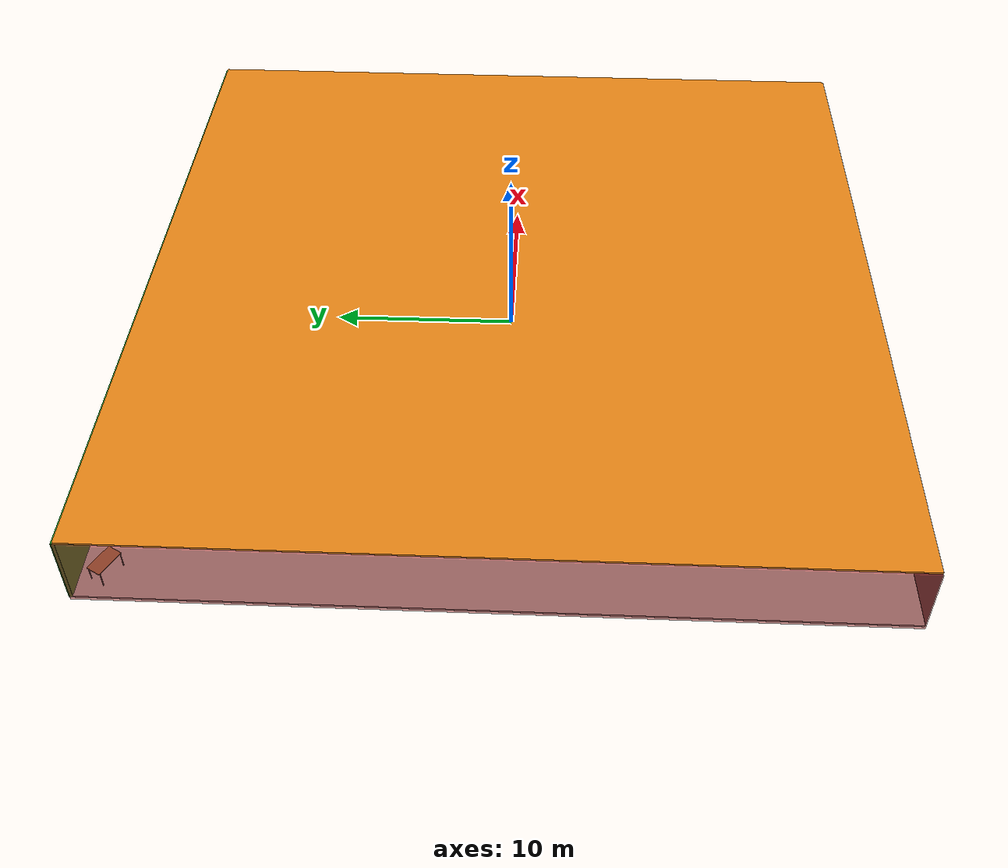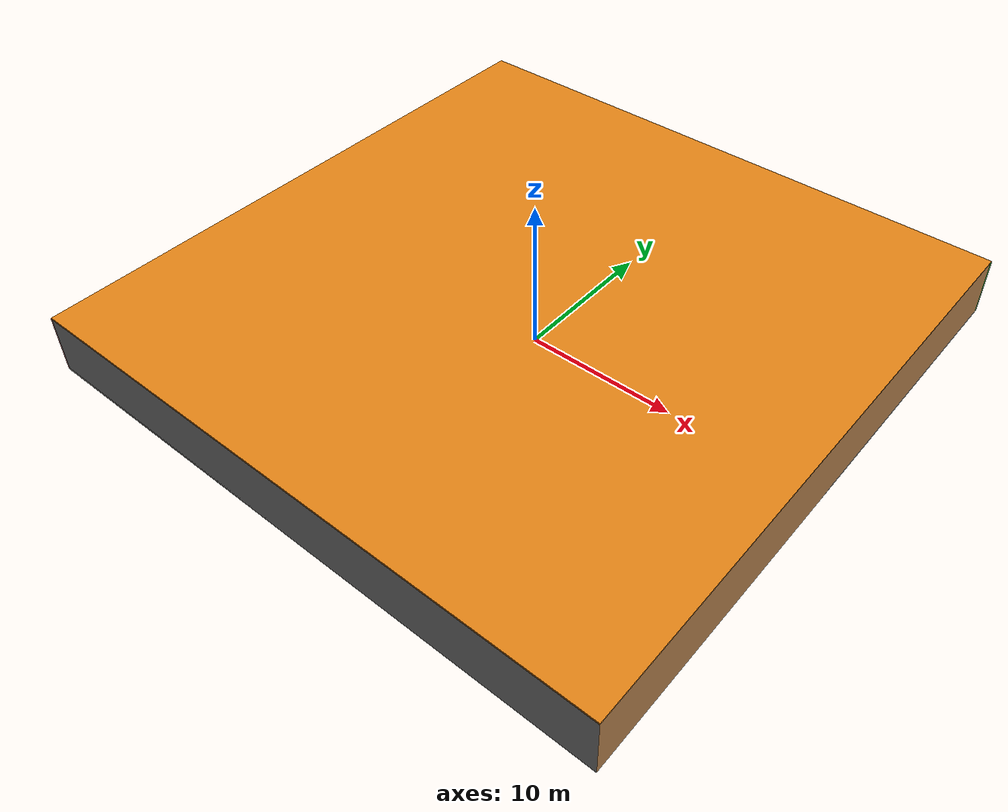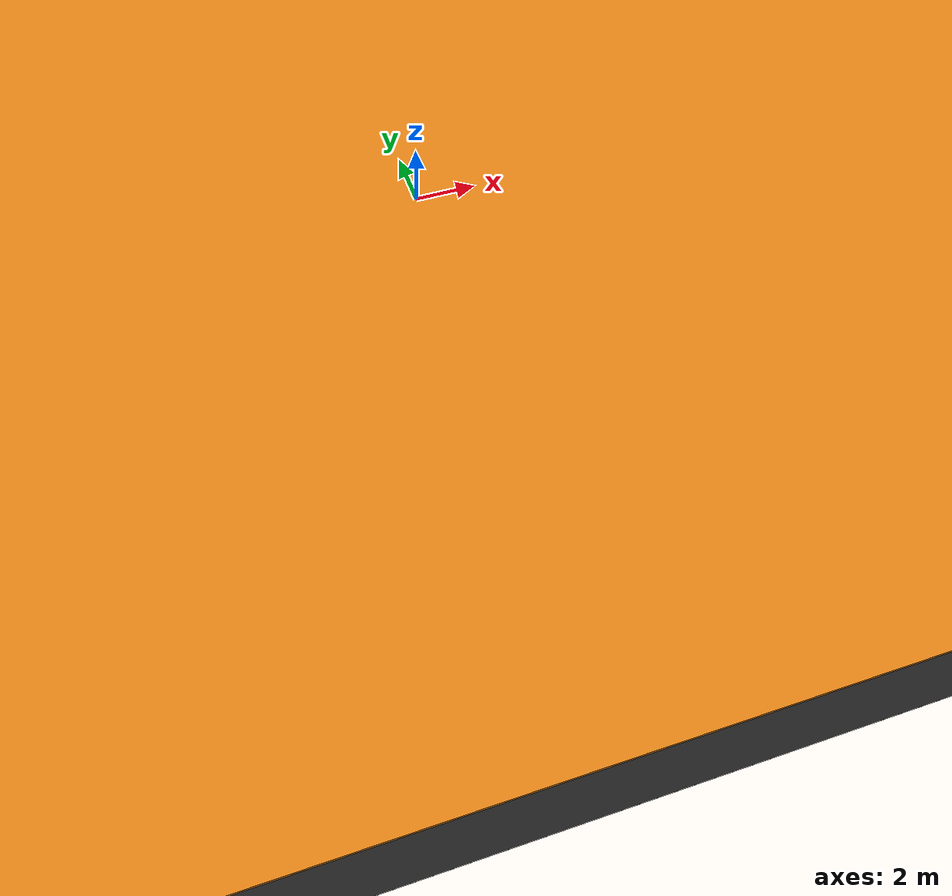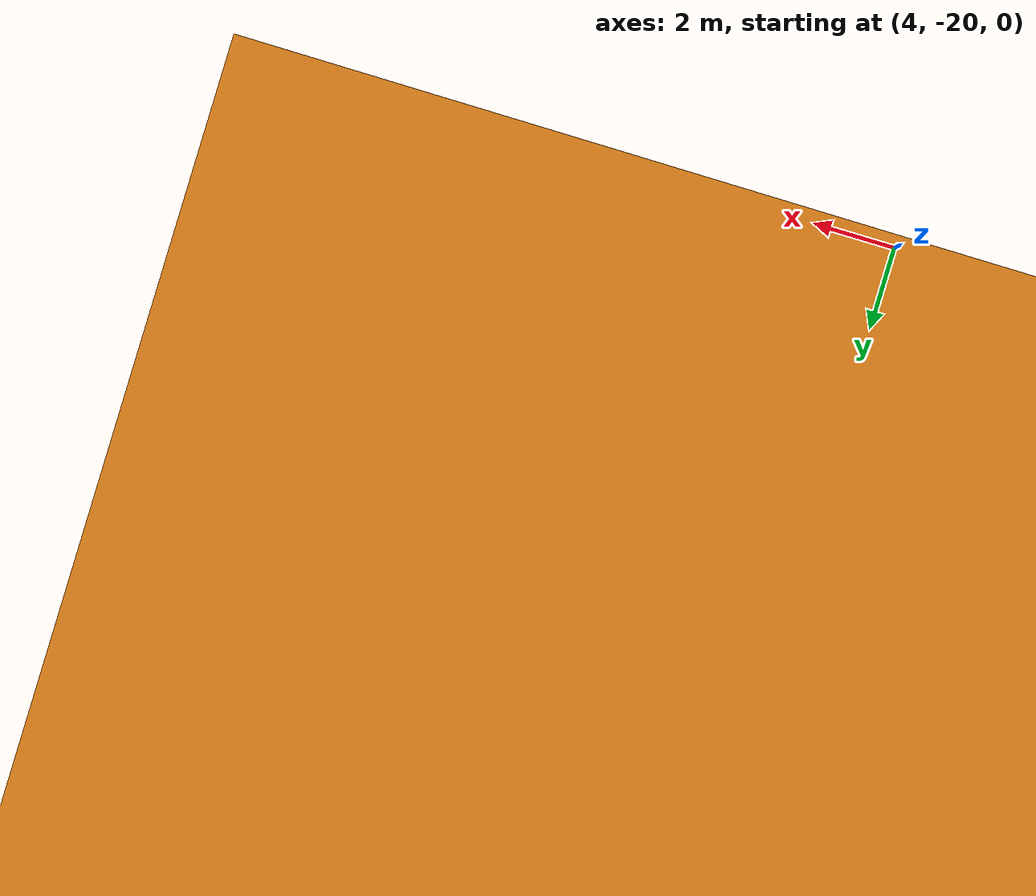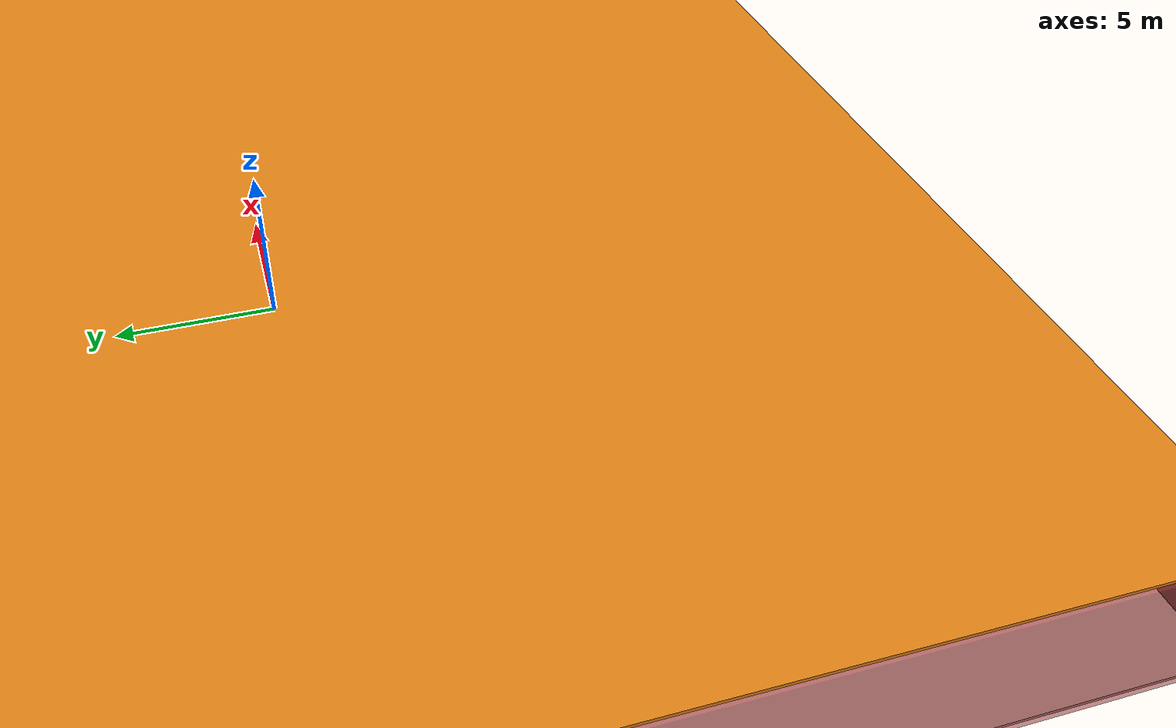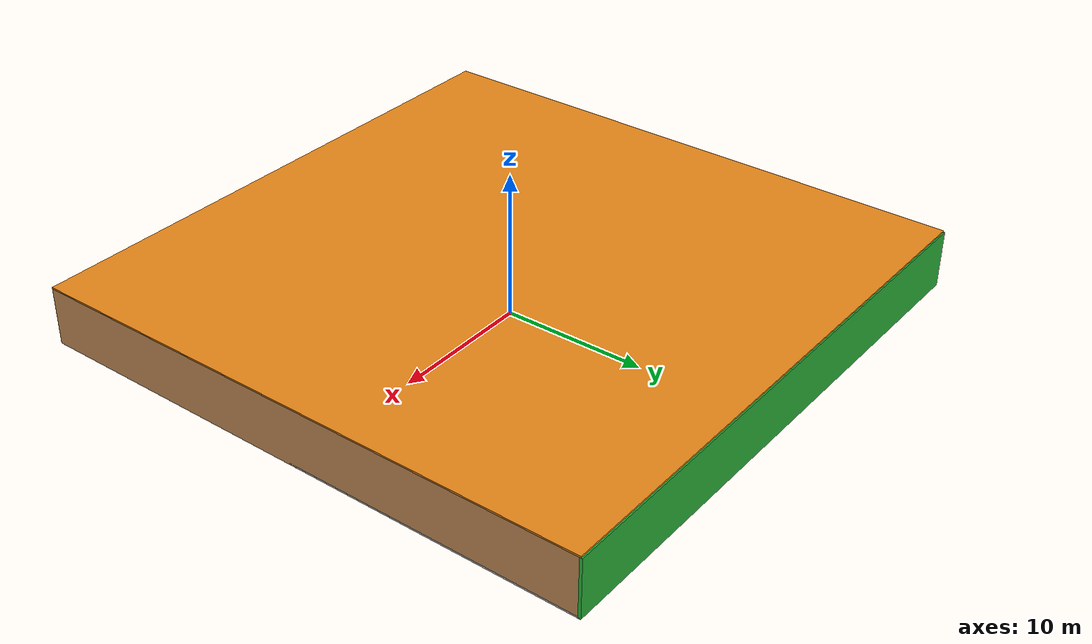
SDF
<sdf version="1.4">
 <world name="default">
  <physics type="ode">
   <max_step_size>0.001</max_step_size>
   <real_time_factor>1</real_time_factor>
   <real_time_update_rate>1000</real_time_update_rate>
   <gravity>0 0 -9.8</gravity>
  </physics>
  <scene><ambient>0.4 0.4 0.4 1</ambient><background>0.7 0.7 0.7 1</background><shadows>1</shadows></scene>
  <model name="Surrounding">
   <static>1</static>
   <link name="Ceiling">
    <collision name="Ceiling_Collision"><geometry><box><size>40 40 0.1</size></box></geometry></collision>
    <visual name="Ceiling_Visual">
     <geometry><box><size>40 40 0.1</size></box></geometry>
     <material>
      <script><uri>file://media/materials/scripts/gazebo.material</uri><name>Gazebo/Orange</name></script>
     </material>
    </visual>
    <pose>0 0 4.05 0 0 0</pose>
   </link>
   <link name="Wall_South">
    <collision name="Wall_South_Collision">
     <geometry><box><size>40 0 4</size></box></geometry>
     <pose>0 0 2 0 -0 0</pose>
    </collision>
    <visual name="Wall_South_Visual">
     <pose>0 0 2 0 -0 0</pose>
     <geometry><box><size>40 0 4</size></box></geometry>
     <material>
      <script><uri>file://media/materials/scripts/gazebo.material</uri><name>Gazebo/Road</name></script>
     </material>
    </visual>
    <velocity_decay><linear>0</linear><angular>0</angular></velocity_decay>
    <pose>0 -20 0 0 -0 0</pose>
   </link>
   <link name="Wall_East">
    <collision name="Wall_21_Collision">
     <geometry><box><size>40 0 4</size></box></geometry>
     <pose>0 0 2 0 -0 0</pose>
    </collision>
    <visual name="Wall_21_Visual">
     <pose>0 0 2 0 -0 0</pose>
     <geometry><box><size>40 0 4</size></box></geometry>
     <material>
      <script><uri>file://media/materials/scripts/gazebo.material</uri><name>Gazebo/Wood</name></script>
     </material>
    </visual>
    <velocity_decay><linear>0</linear><angular>0</angular></velocity_decay>
    <pose>20 0 0 0 -0 1.5708</pose>
   </link>
   <link name="Wall_North">
    <collision name="Wall_22_Collision">
     <geometry><box><size>40 0.2 4</size></box></geometry>
     <pose>0 0 2 0 -0 0</pose>
    </collision>
    <visual name="Wall_22_Visual">
     <pose>0 0 2 0 -0 0</pose>
     <geometry><box><size>40 0.2 4</size></box></geometry>
     <material>
      <script><uri>file://media/materials/scripts/gazebo.material</uri><name>Gazebo/Green</name></script>
     </material>
    </visual>
    <velocity_decay><linear>0</linear><angular>0</angular></velocity_decay>
    <pose>0 20 0 0 -0 0</pose>
   </link>
   <link name="Wall_West">
    <collision name="Wall_23_Collision">
     <geometry><box><size>40 0.2 4</size></box></geometry>
     <pose>0 0 2 0 -0 0</pose>
    </collision>
    <visual name="Wall_23_Visual">
     <pose>0 0 2 0 -0 0</pose>
     <geometry><box><size>40 0.2 4</size></box></geometry>
     <material>
      <script><uri>file://media/materials/scripts/gazebo.material</uri><name>Gazebo/RedTransparent</name></script>
     </material>
    </visual>
    <velocity_decay><linear>0</linear><angular>0</angular></velocity_decay>
    <pose>-20 0 0 0 0 -1.5708</pose>
   </link>
   <link name="Ground_link">
    <collision name="collision">
     <pose>0 0 .05 0 -0 0</pose>
     <geometry><box><size>40 40 0.1</size></box></geometry>
    </collision>
    <visual name="visual">
     <pose>0 0 .05 0 -0 0</pose>
     <geometry><box><size>40 40 0.1</size></box></geometry>
     <material>
      <script><uri>file://media/materials/scripts/gazebo.material</uri><name>Gazebo/CeilingTiled</name></script>
     </material>
    </visual>
   </link>
   <static>1</static>
  </model>
  <spherical_coordinates>
   <surface_model>EARTH_WGS84</surface_model>
   <latitude_deg>0</latitude_deg>
   <longitude_deg>0</longitude_deg>
   <elevation>0</elevation>
   <heading_deg>0</heading_deg>
  </spherical_coordinates>
  <light name="lightball_0" type="diffuse">
   <diffuse>0.8 0.8 0.8 1</diffuse>
   <specular>0.2 0.2 0.2 1</specular>
   <attenuation>
    <range>100</range>
    <constant>0.7</constant>
    <linear>0.01</linear>
    <quadratic>0.001</quadratic>
   </attenuation>
   <direction>-0.5 0.1 -0.9</direction>
   <pose>-18.6530033216 16.1858257118 3.29617393302 0 0 0</pose>
  </light>
  <light name="lightball_1" type="diffuse">
   <diffuse>0.8 0.8 0.8 1</diffuse>
   <specular>0.2 0.2 0.2 1</specular>
   <attenuation>
    <range>100</range>
    <constant>0.7</constant>
    <linear>0.01</linear>
    <quadratic>0.001</quadratic>
   </attenuation>
   <direction>-0.5 0.1 -0.9</direction>
   <pose>-10.1456002348 -4.30419962099 3.75222881903 0 0 0</pose>
  </light>
  <light name="lightball_2" type="diffuse">
   <diffuse>0.8 0.8 0.8 1</diffuse>
   <specular>0.2 0.2 0.2 1</specular>
   <attenuation>
    <range>100</range>
    <constant>0.7</constant>
    <linear>0.01</linear>
    <quadratic>0.001</quadratic>
   </attenuation>
   <direction>-0.5 0.1 -0.9</direction>
   <pose>-0.144484770459 10.1518648158 2.07344115544 0 0 0</pose>
  </light>
  <light name="lightball_3" type="diffuse">
   <diffuse>0.8 0.8 0.8 1</diffuse>
   <specular>0.2 0.2 0.2 1</specular>
   <attenuation>
    <range>100</range>
    <constant>0.7</constant>
    <linear>0.01</linear>
    <quadratic>0.001</quadratic>
   </attenuation>
   <direction>-0.5 0.1 -0.9</direction>
   <pose>-2.05408486161 8.09708014171 1.28815220465 0 0 0</pose>
  </light>
  <include><uri>model://table</uri><pose>-18.5688129179 18.6132939805 0 0 0 2.6403186764</pose></include>
  <include>
   <uri>model://construction_cone</uri>
   <pose>-13.7831986203 10.5693557417 0 0 0 2.62201405561</pose>
  </include>
  <include>
   <uri>model://construction_cone</uri>
   <pose>-11.4257951633 -11.8888873644 0 0 0 0.793745838158</pose>
  </include>
  <include><uri>model://cabinet</uri><pose>-8.03996687268 -6.27461390918 0 0 0 2.57707320908</pose></include>
  <include><uri>model://cabinet</uri><pose>-7.88476114991 10.2659199374 0 0 0 0.790151262859</pose></include>
  <include>
   <uri>model://construction_cone</uri>
   <pose>-7.75994026307 17.4781413958 0 0 0 0.0629765181719</pose>
  </include>
  <include>
   <uri>model://robocup_3Dsim_goal</uri>
   <pose>-4.86856112813 -15.4783533399 0 0 0 0.0165869029151</pose>
  </include>
  <include><uri>model://cabinet</uri><pose>-4.55097404275 -0.0835467165682 0 0 0 1.31879157942</pose></include>
  <include><uri>model://cabinet</uri><pose>-4.79327804837 6.16695975256 0 0 0 2.37871545829</pose></include>
  <include><uri>model://table</uri><pose>-5.55182978241 9.58162070951 0 0 0 1.8173446063</pose></include>
  <include>
   <uri>model://robocup_3Dsim_goal</uri>
   <pose>-3.63007542629 -9.52763131317 0 0 0 1.08967127922</pose>
  </include>
  <include>
   <uri>model://textured_shapes</uri>
   <pose>1.48287062089 -15.1870803063 0 0 0 0.65045211363</pose>
  </include>
  <include>
   <uri>model://textured_shapes</uri>
   <pose>-0.644918374374 -0.355546439946 0 0 0 0.466828322672</pose>
  </include>
  <include>
   <uri>model://robocup_3Dsim_goal</uri>
   <pose>-0.619627891082 14.5539857118 0 0 0 0.240623513738</pose>
  </include>
  <include><uri>model://table</uri><pose>1.39567912458 18.6108041659 0 0 0 3.04479005175</pose></include>
  <include>
   <uri>model://textured_shapes</uri>
   <pose>4.18127428824 -0.661556968273 0 0 0 2.68647430035</pose>
  </include>
  <include>
   <uri>model://construction_cone</uri>
   <pose>2.35920198945 3.81780577108 0 0 0 3.08094350135</pose>
  </include>
  <include><uri>model://cabinet</uri><pose>2.85077683255 14.5412522988 0 0 0 0.772989924669</pose></include>
  <include><uri>model://cabinet</uri><pose>5.4337002154 3.96305440561 0 0 0 1.45948605054</pose></include>
  <include>
   <uri>model://textured_shapes</uri>
   <pose>5.90014492805 6.30675931113 0 0 0 1.56715083789</pose>
  </include>
  <include>
   <uri>model://robocup_3Dsim_goal</uri>
   <pose>9.81633012626 -17.4547869027 0 0 0 2.66898943786</pose>
  </include>
  <include><uri>model://table</uri><pose>9.78509218105 -14.0314865185 0 0 0 1.63475222316</pose></include>
  <include>
   <uri>model://construction_cone</uri>
   <pose>9.48716043059 -10.5348729889 0 0 0 0.890793406962</pose>
  </include>
  <include>
   <uri>model://textured_shapes</uri>
   <pose>9.60592705599 -5.48466841715 0 0 0 0.74024226767</pose>
  </include>
  <include>
   <uri>model://textured_shapes</uri>
   <pose>9.48564924611 8.75714028157 0 0 0 1.06846737104</pose>
  </include>
  <include>
   <uri>model://construction_cone</uri>
   <pose>13.662680539 -18.5820226744 0 0 0 0.937622018523</pose>
  </include>
  <include><uri>model://table</uri><pose>13.5915613116 -14.8009502332 0 0 0 0.226032658548</pose></include>
  <include>
   <uri>model://robocup_3Dsim_goal</uri>
   <pose>13.0188014403 -8.11688094112 0 0 0 0.164611519033</pose>
  </include>
  <include><uri>model://cabinet</uri><pose>12.6964030532 10.3229431268 0 0 0 1.70836309753</pose></include>
  <include><uri>model://table</uri><pose>15.3069850657 -14.7581755172 0 0 0 0.519538495022</pose></include>
  <include><uri>model://cabinet</uri><pose>15.0658974067 -8.39009982866 0 0 0 3.04118587562</pose></include>
  <include><uri>model://cabinet</uri><pose>15.3855818318 18.1653659565 0 0 0 2.83775438268</pose></include>
  <include><uri>model://cabinet</uri><pose>18.5422306989 -14.6269399697 0 0 0 2.03764058625</pose></include>
  <include><uri>model://cabinet</uri><pose>18.2199409909 4.58824439627 0 0 0 2.99959725269</pose></include>
  <include><uri>model://cabinet</uri><pose>18.7413150904 15.4017580906 0 0 0 1.01289018411</pose></include>
 </world>
</sdf>

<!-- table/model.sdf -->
<sdf version="1.5">
  <model name="table">
    <static>true</static>
    <link name="link">
      <collision name="surface">
        <pose>0 0 1.0 0 0 0</pose>
        <geometry>
          <box>
            <size>1.5 0.8 0.03</size>
          </box>
        </geometry>
        <surface>
          <friction>
            <ode>
              <mu>0.6</mu>
              <mu2>0.6</mu2>
            </ode>
          </friction>
        </surface>
      </collision>
      <visual name="visual1">
        <pose>0 0 1.0 0 0 0</pose>
        <geometry>
          <box>
            <size>1.5 0.8 0.03</size>
          </box>
        </geometry>
        <material>
          <script>
            <uri>model://media/materials/scripts/gazebo.material</uri>
            <name>Gazebo/Wood</name>
          </script>
        </material>
      </visual>
      <collision name="front_left_leg">
        <pose>0.68 0.38 0.5 0 0 0</pose>
        <geometry>
          <cylinder>
            <radius>0.02</radius>
            <length>1.0</length>
          </cylinder>
        </geometry>
      </collision>
      <visual name="front_left_leg">
        <pose>0.68 0.38 0.5 0 0 0</pose>
        <geometry>
          <cylinder>
            <radius>0.02</radius>
            <length>1.0</length>
          </cylinder>
        </geometry>
        <material>
          <script>
            <uri>model://media/materials/scripts/gazebo.material</uri>
            <name>Gazebo/Grey</name>
          </script>
        </material>
      </visual>
      <collision name="front_right_leg">
        <pose>0.68 -0.38 0.5 0 0 0</pose>
        <geometry>
          <cylinder>
            <radius>0.02</radius>
            <length>1.0</length>
          </cylinder>
        </geometry>
      </collision>
      <visual name="front_right_leg">
        <pose>0.68 -0.38 0.5 0 0 0</pose>
        <geometry>
          <cylinder>
            <radius>0.02</radius>
            <length>1.0</length>
          </cylinder>
        </geometry>
        <material>
          <script>
            <uri>model://media/materials/scripts/gazebo.material</uri>
            <name>Gazebo/Grey</name>
          </script>
        </material>
      </visual>
      <collision name="back_right_leg">
        <pose>-0.68 -0.38 0.5 0 0 0</pose>
        <geometry>
          <cylinder>
            <radius>0.02</radius>
            <length>1.0</length>
          </cylinder>
        </geometry>
      </collision>
      <visual name="back_right_leg">
        <pose>-0.68 -0.38 0.5 0 0 0</pose>
        <geometry>
          <cylinder>
            <radius>0.02</radius>
            <length>1.0</length>
          </cylinder>
        </geometry>
        <material>
          <script>
            <uri>model://media/materials/scripts/gazebo.material</uri>
            <name>Gazebo/Grey</name>
          </script>
        </material>
      </visual>
      <collision name="back_left_leg">
        <pose>-0.68 0.38 0.5 0 0 0</pose>
        <geometry>
          <cylinder>
            <radius>0.02</radius>
            <length>1.0</length>
          </cylinder>
        </geometry>
      </collision>
      <visual name="back_left_leg">
        <pose>-0.68 0.38 0.5 0 0 0</pose>
        <geometry>
          <cylinder>
            <radius>0.02</radius>
            <length>1.0</length>
          </cylinder>
        </geometry>
        <material>
          <script>
            <uri>model://media/materials/scripts/gazebo.material</uri>
            <name>Gazebo/Grey</name>
          </script>
        </material>
      </visual>
    </link>
  </model>
</sdf>

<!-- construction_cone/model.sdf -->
<sdf version="1.5">
  <model name="Construction Cone">
    <link name="link">
      <collision name="collision">
        <geometry>
          <mesh>
            <scale>10 10 10</scale>
            <uri>file://isr-testbed/construction_cone/meshes/construction_cone.dae</uri>
          </mesh>
        </geometry>
      </collision>
      <visual name="visual">
        <geometry>
          <mesh>
            <scale>10 10 10</scale>
            <uri>file://isr-testbed/construction_cone/meshes/construction_cone.dae</uri>
          </mesh>
        </geometry>
      </visual>
    </link>
  </model>
</sdf>

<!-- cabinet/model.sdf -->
<sdf version="1.5">
  <model name="cabinet">
    <static>true</static>
    <link name="cabinet_bottom_plate">
      <inertial>
        <pose>0 0 -1 0 0 0</pose>
        <inertia>
          <ixx>2.050000</ixx>
          <ixy>0</ixy>
          <ixz>0</ixz>
          <iyy>2.050000</iyy>
          <iyz>0</iyz>
          <izz>2.050000</izz>
        </inertia>
        <mass>25.000000</mass>
      </inertial>
      <collision name="cabinet_bottom_plate_geom">
        <pose>0 0 0.010000 0 0 0</pose>
        <geometry>
          <box>
            <size>0.450000 0.450000 0.020000</size>
          </box>
        </geometry>
      </collision>
      <visual name="cabinet_bottom_plate_geom_visual">
        <pose>0 0 0.010000 0 0 0</pose>
        <geometry>
          <box>
            <size>0.450000 0.450000 0.020000</size>
          </box>
        </geometry>
        <material>
          <script>
            <uri>model://media/materials/scripts/gazebo.material</uri>
            <name>Gazebo/Wood</name>
          </script>
        </material>
      </visual>
      <collision name="cabinet_bottom_plate_geom_cabinet_back_plate">
        <pose>0.235000 0 0.510000 0 0 0</pose>
        <geometry>
          <box>
            <size>0.020000 0.450000 1.020000</size>
          </box>
        </geometry>
      </collision>
      <visual name="cabinet_bottom_plate_geom_cabinet_back_plate_visual">
        <pose>0.235000 0 0.510000 0 0 0</pose>
        <geometry>
          <box>
            <size>0.020000 0.450000 1.020000</size>
          </box>
        </geometry>
        <material>
          <script>
            <uri>model://media/materials/scripts/gazebo.material</uri>
            <name>Gazebo/Wood</name>
          </script>
        </material>
      </visual>
      <collision name="cabinet_bottom_plate_geom_cabinet_left_plate">
        <pose>0 0.235000 0.510000 0 0 0</pose>
        <geometry>
          <box>
            <size>0.450000 0.020000 1.020000</size>
          </box>
        </geometry>
      </collision>
      <visual name="cabinet_bottom_plate_geom_cabinet_left_plate_visual">
        <pose>0 0.235000 0.510000 0 0 0</pose>
        <geometry>
          <box>
            <size>0.450000 0.020000 1.020000</size>
          </box>
        </geometry>
        <material>
          <script>
            <uri>model://media/materials/scripts/gazebo.material</uri>
            <name>Gazebo/Wood</name>
          </script>
        </material>
      </visual>
      <collision name="cabinet_bottom_plate_geom_cabinet_middle_plate">
        <pose>0 0 0.510000 0 0 0</pose>
        <geometry>
          <box>
            <size>0.450000 0.450000 0.020000</size>
          </box>
        </geometry>
      </collision>
      <visual name="cabinet_bottom_plate_geom_cabinet_middle_plate_visual">
        <pose>0 0 0.510000 0 0 0</pose>
        <geometry>
          <box>
            <size>0.450000 0.450000 0.020000</size>
          </box>
        </geometry>
        <material>
          <script>
            <uri>model://media/materials/scripts/gazebo.material</uri>
            <name>Gazebo/Wood</name>
          </script>
        </material>
      </visual>
      <collision name="cabinet_bottom_plate_geom_cabinet_right_plate">
        <pose>0 -0.235000 0.510000 0 0 0</pose>
        <geometry>
          <box>
            <size>0.450000 0.020000 1.020000</size>
          </box>
        </geometry>
      </collision>
      <visual name="cabinet_bottom_plate_geom_cabinet_right_plate_visual">
        <pose>0 -0.235000 0.510000 0 0 0</pose>
        <geometry>
          <box>
            <size>0.450000 0.020000 1.020000</size>
          </box>
        </geometry>
        <material>
          <script>
            <uri>model://media/materials/scripts/gazebo.material</uri>
            <name>Gazebo/Wood</name>
          </script>
        </material>
      </visual>
      <collision name="cabinet_bottom_plate_geom_cabinet_top_plate">
        <pose>0 0 1.010000 0 0 0</pose>
        <geometry>
          <box>
            <size>0.450000 0.450000 0.020000</size>
          </box>
        </geometry>
      </collision>
      <visual name="cabinet_bottom_plate_geom_cabinet_top_plate_visual">
        <pose>0 0 1.010000 0 0 0</pose>
        <geometry>
          <box>
            <size>0.450000 0.450000 0.020000</size>
          </box>
        </geometry>
        <material>
          <script>
            <uri>model://media/materials/scripts/gazebo.material</uri>
            <name>Gazebo/Wood</name>
          </script>
        </material>
      </visual>
    </link>
  </model>
</sdf>

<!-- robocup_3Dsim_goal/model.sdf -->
<sdf version="1.5">
  <model name="robocup_3d_goal">
    <static>true</static>
    <link name="left_post">
      <pose>0 1.05 0.45 0 0 0</pose>
      <collision name="collision">
        <geometry>
          <cylinder>
            <radius>0.05</radius>
            <length>0.9</length>
          </cylinder>
        </geometry>
      </collision>
      <visual name="visual">
        <geometry>
          <cylinder>
            <radius>0.05</radius>
            <length>0.9</length>
          </cylinder>
        </geometry>
        <material>
          <script>
            <uri>file://media/materials/scripts/gazebo.material</uri>
            <name>Gazebo/ZincYellow</name>
          </script>
        </material>
      </visual>
    </link>
    <link name="left_support_horiz_lower">
      <pose>0.30 1.05 0.01 0 0 0</pose>
      <collision name="collision">
        <geometry>
          <box>
            <size>0.50 0.02 0.02</size>
          </box>
        </geometry>
      </collision>
      <visual name="visual">
        <geometry>
          <box>
            <size>0.50 0.02 0.02</size>
          </box>
        </geometry>
        <material>
          <script>
            <uri>file://media/materials/scripts/gazebo.material</uri>
            <name>Gazebo/White</name>
          </script>
        </material>
      </visual>
    </link>
    <link name="left_support_horiz_upper">
      <pose>0.30 1.05 0.79 0 0 0</pose>
      <collision name="collision">
        <geometry>
          <box>
            <size>0.50 0.02 0.02</size>
          </box>
        </geometry>
      </collision>
      <visual name="visual">
        <geometry>
          <box>
            <size>0.50 0.02 0.02</size>
          </box>
        </geometry>
        <material>
          <script>
            <uri>file://media/materials/scripts/gazebo.material</uri>
            <name>Gazebo/White</name>
          </script>
        </material>
      </visual>
    </link>
    <link name="left_support_vertical">
      <pose>0.56 1.05 0.4 0 1.5708 0</pose>
      <collision name="collision">
        <geometry>
          <box>
            <size>0.80 0.02 0.02</size>
          </box>
        </geometry>
      </collision>
      <visual name="visual">
        <geometry>
          <box>
            <size>0.80 0.02 0.02</size>
          </box>
        </geometry>
        <material>
          <script>
            <uri>file://media/materials/scripts/gazebo.material</uri>
            <name>Gazebo/White</name>
          </script>
        </material>
      </visual>
    </link>
    <link name="right_support_horiz_lower">
      <pose>0.30 -1.05 0.01 0 0 0</pose>
      <collision name="collision">
        <geometry>
          <box>
            <size>0.50 0.02 0.02</size>
          </box>
        </geometry>
      </collision>
      <visual name="visual">
        <geometry>
          <box>
            <size>0.50 0.02 0.02</size>
          </box>
        </geometry>
        <material>
          <script>
            <uri>file://media/materials/scripts/gazebo.material</uri>
            <name>Gazebo/White</name>
          </script>
        </material>
      </visual>
    </link>
    <link name="right_support_horiz_upper">
      <pose>0.30 -1.05 0.79 0 0 0</pose>
      <collision name="collision">
        <geometry>
          <box>
            <size>0.50 0.02 0.02</size>
          </box>
        </geometry>
      </collision>
      <visual name="visual">
        <geometry>
          <box>
            <size>0.50 0.02 0.02</size>
          </box>
        </geometry>
        <material>
          <script>
            <uri>file://media/materials/scripts/gazebo.material</uri>
            <name>Gazebo/White</name>
          </script>
        </material>
      </visual>
    </link>
    <link name="right_support_vertical">
      <pose>0.56 -1.05 0.4 0 1.5708 0</pose>
      <collision name="collision">
        <geometry>
          <box>
            <size>0.80 0.02 0.02</size>
          </box>
        </geometry>
      </collision>
      <visual name="visual">
        <geometry>
          <box>
            <size>0.80 0.02 0.02</size>
          </box>
        </geometry>
        <material>
          <script>
            <uri>file://media/materials/scripts/gazebo.material</uri>
            <name>Gazebo/White</name>
          </script>
        </material>
      </visual>
    </link>
    <link name="center_support_horiz_lower">
      <pose>0.56 0 0.01 0 1.5708 0</pose>
      <collision name="collision">
        <geometry>
          <box>
            <size>0.02 2.08 0.02</size>
          </box>
        </geometry>
      </collision>
      <visual name="visual">
        <geometry>
          <box>
            <size>0.02 2.08 0.02</size>
          </box>
        </geometry>
        <material>
          <script>
            <uri>file://media/materials/scripts/gazebo.material</uri>
            <name>Gazebo/White</name>
          </script>
        </material>
      </visual>
    </link>
    <link name="center_support_horiz_upper">
      <pose>0.56 0 0.79 0 1.5708 0</pose>
      <collision name="collision">
        <geometry>
          <box>
            <size>0.02 2.08 0.02</size>
          </box>
        </geometry>
      </collision>
      <visual name="visual">
        <geometry>
          <box>
            <size>0.02 2.08 0.02</size>
          </box>
        </geometry>
        <material>
          <script>
            <uri>file://media/materials/scripts/gazebo.material</uri>
            <name>Gazebo/White</name>
          </script>
        </material>
      </visual>
    </link>
    <link name="right_post">
      <pose>0 -1.05 0.45 0 0 0</pose>
      <collision name="collision">
        <geometry>
          <cylinder>
            <radius>0.05</radius>
            <length>0.9</length>
          </cylinder>
        </geometry>
      </collision>
      <visual name="visual">
        <geometry>
          <cylinder>
            <radius>0.05</radius>
            <length>0.9</length>
          </cylinder>
        </geometry>
        <material>
          <script>
            <uri>file://media/materials/scripts/gazebo.material</uri>
            <name>Gazebo/ZincYellow</name>
          </script>
        </material>
      </visual>
    </link>
    <link name="crossbar">
      <pose>0 0 0.85 1.57 1.57 0</pose>
      <collision name="collision">
        <geometry>
          <cylinder>
            <radius>0.05</radius>
            <length>2.0</length>
          </cylinder>
        </geometry>
      </collision>
      <visual name="visual">
        <geometry>
          <cylinder>
            <radius>0.05</radius>
            <length>2.0</length>
          </cylinder>
        </geometry>
        <material>
          <script>
            <uri>file://media/materials/scripts/gazebo.material</uri>
            <name>Gazebo/ZincYellow</name>
          </script>
        </material>
      </visual>
    </link>
    <link name="center_net">
      <pose>0.56 0 0.40 0 0 0</pose>
      <collision name="collision">
        <geometry>
          <box>
            <size>0.01 2.1 0.80</size>
          </box>
        </geometry>
      </collision>
      <visual name="visual">
        <geometry>
          <box>
            <size>0.01 2.1 0.80</size>
          </box>
        </geometry>
        <material>
          <script>
            <uri>model://../model_source/models/robocup09_spl_field/materials/scripts/</uri>
            <uri>model://../model_source/models/robocup09_spl_field/materials/textures/</uri>
            <name>RoboCup/Net</name>
          </script>
        </material>
      </visual>
    </link>
    <link name="left_net">
      <pose>0.30 1.05 0.40 0 0 0</pose>
      <collision name="collision">
        <geometry>
          <box>
            <size>0.50 0.01 0.76</size>
          </box>
        </geometry>
      </collision>
      <visual name="visual">
        <geometry>
          <box>
            <size>0.50 0.01 0.76</size>
          </box>
        </geometry>
        <material>
          <script>
            <uri>model://../model_source/models/robocup09_spl_field/materials/scripts/</uri>
            <uri>model://../model_source/models/robocup09_spl_field/materials/textures/</uri>
            <name>RoboCup/Net</name>
          </script>
        </material>
      </visual>
    </link>
    <link name="right_net">
      <pose>0.30 -1.05 0.40 0 0 0</pose>
      <collision name="collision">
        <geometry>
          <box>
            <size>0.50 0.01 0.76</size>
          </box>
        </geometry>
      </collision>
      <visual name="visual">
        <geometry>
          <box>
            <size>0.50 0.01 0.76</size>
          </box>
        </geometry>
        <material>
          <script>
            <uri>model://../model_source/models/robocup09_spl_field/materials/scripts/</uri>
            <uri>model://../model_source/models/robocup09_spl_field/materials/textures/</uri>
            <name>RoboCup/Net</name>
          </script>
        </material>
      </visual>
    </link>
  </model>
</sdf>

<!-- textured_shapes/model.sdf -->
<sdf version="1.6">
  <model name="textured_shapes">
    <pose>0 0 0.5 0 0 0</pose>
    <link name="box">
      <pose>0 -1.5 0 0 0 0</pose>
      <collision name="collision">
        <geometry>
          <box>
            <size>1 1 1</size>
          </box>
        </geometry>
      </collision>
      <visual name="visual">
        <geometry>
          <box>
            <size>1 1 1</size>
          </box>
        </geometry>
        <material>
          <script>
            <uri>model://../model_source/models/textured_shapes/materials/scripts</uri>
            <uri>model://../model_source/models/textured_shapes/materials/textures</uri>
            <name>TexturedShape/Squares</name>
          </script>
        </material>
      </visual>
    </link>
    <link name="sphere">
      <collision name="collision">
        <geometry>
          <sphere>
            <radius>0.5</radius>
          </sphere>
        </geometry>
      </collision>
      <visual name="visual">
        <geometry>
          <sphere>
            <radius>0.5</radius>
          </sphere>
        </geometry>
        <material>
          <script>
            <uri>model://../model_source/models/textured_shapes/materials/scripts</uri>
            <uri>model://../model_source/models/textured_shapes/materials/textures</uri>
            <name>TexturedShape/Squares</name>
          </script>
        </material>
      </visual>
    </link>
    <link name="cylinder">
      <pose>0 1.5 0 0 0 0</pose>
      <collision name="collision">
        <geometry>
          <cylinder>
            <radius>0.5</radius>
            <length>1</length>
          </cylinder>
        </geometry>
      </collision>
      <visual name="visual">
        <geometry>
          <cylinder>
            <radius>0.5</radius>
            <length>1</length>
          </cylinder>
        </geometry>
        <material>
          <script>
            <uri>model://../model_source/models/textured_shapes/materials/scripts</uri>
            <uri>model://../model_source/models/textured_shapes/materials/textures</uri>
            <name>TexturedShape/Squares</name>
          </script>
        </material>
      </visual>
    </link>
  </model>
</sdf>
